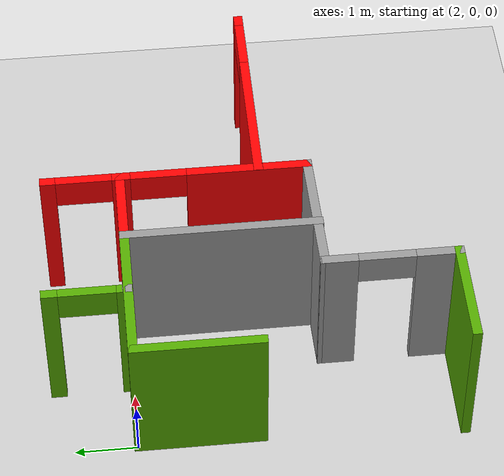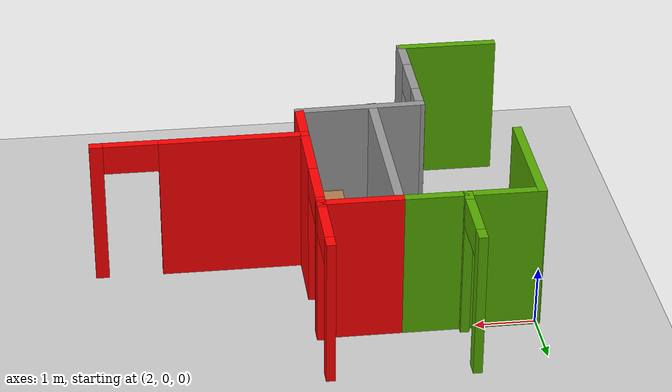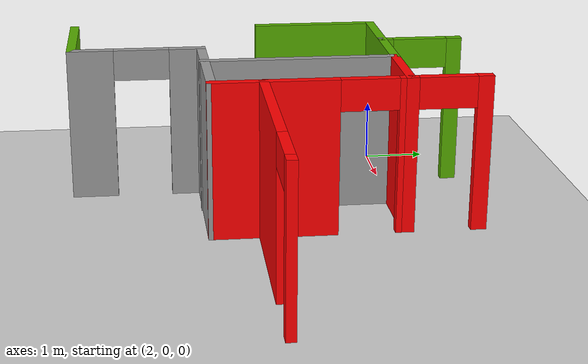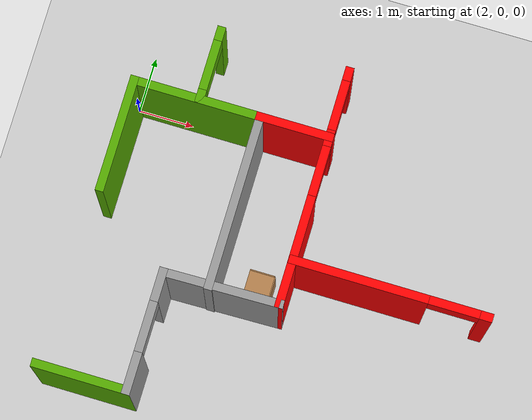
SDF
<sdf version="1.6">
 <world name="default">
  <model name="ground_plane">
   <static>1</static>
   <link name="link">
    <collision name="collision">
     <geometry><plane><normal>0 0 1</normal><size>100 100</size></plane></geometry>
     <surface><friction><ode><mu>100</mu><mu2>50</mu2></ode></friction></surface>
    </collision>
    <visual name="visual">
     <cast_shadows>0</cast_shadows>
     <geometry><plane><normal>0 0 1</normal><size>100 100</size></plane></geometry>
     <material>
      <script><uri>file://media/materials/scripts/gazebo.material</uri><name>Gazebo/Grey</name></script>
     </material>
    </visual>
   </link>
  </model>
  <model name="1floorHouse">
   <link name="Wall_300">
    <pose>-0.789795 0.509996 0 0 0 -1.5708</pose>
    <visual name="Wall_300_Visual_0">
     <pose>-0.8265 0 1.25 0 -0 0</pose>
     <geometry><box><size>0.597 0.15 2.5</size></box></geometry>
     <material>
      <script><uri>file://media/materials/scripts/gazebo.material</uri><name>Gazebo/Grey</name></script>
      <ambient>1 1 1 1</ambient>
      <diffuse>0.7 0.7 0.7 1</diffuse>
      <specular>0.01 0.01 0.01 1</specular>
      <emissive>0 0 0 1</emissive>
     </material>
    </visual>
    <visual name="Wall_300_Visual_1">
     <pose>0.7485 0 1.25 0 -0 0</pose>
     <geometry><box><size>0.753 0.15 2.5</size></box></geometry>
     <material>
      <script><uri>file://media/materials/scripts/gazebo.material</uri><name>Gazebo/Grey</name></script>
      <ambient>1 1 1 1</ambient>
      <diffuse>0.7 0.7 0.7 1</diffuse>
      <specular>0.01 0.01 0.01 1</specular>
      <emissive>0 0 0 1</emissive>
     </material>
    </visual>
    <visual name="Wall_300_Visual_2">
     <pose>-0.078 0 2.25 0 -0 0</pose>
     <geometry><box><size>0.9 0.15 0.5</size></box></geometry>
     <material>
      <script><uri>file://media/materials/scripts/gazebo.material</uri><name>Gazebo/Grey</name></script>
      <ambient>1 1 1 1</ambient>
      <diffuse>0.7 0.7 0.7 1</diffuse>
      <specular>0.01 0.01 0.01 1</specular>
      <emissive>0 0 0 1</emissive>
     </material>
    </visual>
    <collision name="Wall_300_Collision_0">
     <pose>-0.8265 0 1.25 0 -0 0</pose>
     <geometry><box><size>0.597 0.15 2.5</size></box></geometry>
     <surface>
      <friction>
       <ode><mu>1</mu><mu2>1</mu2><fdir1>0 0 0</fdir1><slip1>0</slip1><slip2>0</slip2></ode>
       <torsional>
        <coefficient>1</coefficient>
        <patch_radius>0</patch_radius>
        <surface_radius>0</surface_radius>
        <use_patch_radius>1</use_patch_radius>
        <ode><slip>0</slip></ode>
       </torsional>
      </friction>
      <bounce><restitution_coefficient>0</restitution_coefficient><threshold>1e+06</threshold></bounce>
      <contact>
       <collide_without_contact>0</collide_without_contact>
       <collide_without_contact_bitmask>1</collide_without_contact_bitmask>
       <collide_bitmask>1</collide_bitmask>
       <ode>
        <soft_cfm>0</soft_cfm>
        <soft_erp>0.2</soft_erp>
        <kp>1e+13</kp>
        <kd>1</kd>
        <max_vel>0.01</max_vel>
        <min_depth>0</min_depth>
       </ode>
       <bullet>
        <split_impulse>1</split_impulse>
        <split_impulse_penetration_threshold>-0.01</split_impulse_penetration_threshold>
        <soft_cfm>0</soft_cfm>
        <soft_erp>0.2</soft_erp>
        <kp>1e+13</kp>
        <kd>1</kd>
       </bullet>
      </contact>
     </surface>
    </collision>
    <collision name="Wall_300_Collision_1">
     <pose>0.7485 0 1.25 0 -0 0</pose>
     <geometry><box><size>0.753 0.15 2.5</size></box></geometry>
     <surface>
      <friction>
       <ode><mu>1</mu><mu2>1</mu2><fdir1>0 0 0</fdir1><slip1>0</slip1><slip2>0</slip2></ode>
       <torsional>
        <coefficient>1</coefficient>
        <patch_radius>0</patch_radius>
        <surface_radius>0</surface_radius>
        <use_patch_radius>1</use_patch_radius>
        <ode><slip>0</slip></ode>
       </torsional>
      </friction>
      <bounce><restitution_coefficient>0</restitution_coefficient><threshold>1e+06</threshold></bounce>
      <contact>
       <collide_without_contact>0</collide_without_contact>
       <collide_without_contact_bitmask>1</collide_without_contact_bitmask>
       <collide_bitmask>1</collide_bitmask>
       <ode>
        <soft_cfm>0</soft_cfm>
        <soft_erp>0.2</soft_erp>
        <kp>1e+13</kp>
        <kd>1</kd>
        <max_vel>0.01</max_vel>
        <min_depth>0</min_depth>
       </ode>
       <bullet>
        <split_impulse>1</split_impulse>
        <split_impulse_penetration_threshold>-0.01</split_impulse_penetration_threshold>
        <soft_cfm>0</soft_cfm>
        <soft_erp>0.2</soft_erp>
        <kp>1e+13</kp>
        <kd>1</kd>
       </bullet>
      </contact>
     </surface>
    </collision>
    <collision name="Wall_300_Collision_2">
     <pose>-0.078 0 2.25 0 -0 0</pose>
     <geometry><box><size>0.9 0.15 0.5</size></box></geometry>
     <surface>
      <friction>
       <ode><mu>1</mu><mu2>1</mu2><fdir1>0 0 0</fdir1><slip1>0</slip1><slip2>0</slip2></ode>
       <torsional>
        <coefficient>1</coefficient>
        <patch_radius>0</patch_radius>
        <surface_radius>0</surface_radius>
        <use_patch_radius>1</use_patch_radius>
        <ode><slip>0</slip></ode>
       </torsional>
      </friction>
      <bounce><restitution_coefficient>0</restitution_coefficient><threshold>1e+06</threshold></bounce>
      <contact>
       <collide_without_contact>0</collide_without_contact>
       <collide_without_contact_bitmask>1</collide_without_contact_bitmask>
       <collide_bitmask>1</collide_bitmask>
       <ode>
        <soft_cfm>0</soft_cfm>
        <soft_erp>0.2</soft_erp>
        <kp>1e+13</kp>
        <kd>1</kd>
        <max_vel>0.01</max_vel>
        <min_depth>0</min_depth>
       </ode>
       <bullet>
        <split_impulse>1</split_impulse>
        <split_impulse_penetration_threshold>-0.01</split_impulse_penetration_threshold>
        <soft_cfm>0</soft_cfm>
        <soft_erp>0.2</soft_erp>
        <kp>1e+13</kp>
        <kd>1</kd>
       </bullet>
      </contact>
     </surface>
    </collision>
   </link>
   <link name="Wall_301">
    <pose>-1.5898 -0.540004 0 0 -0 3.14159</pose>
    <visual name="Wall_301_Visual">
     <pose>0 0 1.25 0 -0 0</pose>
     <geometry><box><size>1.75 0.15 2.5</size></box></geometry>
     <material>
      <script><uri>file://media/materials/scripts/gazebo.material</uri><name>Gazebo/Grey</name></script>
      <ambient>0.333333 0.666667 0 1</ambient>
      <diffuse>0.7 0.7 0.7 1</diffuse>
      <specular>0.01 0.01 0.01 1</specular>
      <emissive>0 0 0 1</emissive>
     </material>
    </visual>
    <collision name="Wall_301_Collision">
     <pose>0 0 1.25 0 -0 0</pose>
     <geometry><box><size>1.75 0.15 2.5</size></box></geometry>
     <surface>
      <friction>
       <ode><mu>1</mu><mu2>1</mu2><fdir1>0 0 0</fdir1><slip1>0</slip1><slip2>0</slip2></ode>
       <torsional>
        <coefficient>1</coefficient>
        <patch_radius>0</patch_radius>
        <surface_radius>0</surface_radius>
        <use_patch_radius>1</use_patch_radius>
        <ode><slip>0</slip></ode>
       </torsional>
      </friction>
      <bounce><restitution_coefficient>0</restitution_coefficient><threshold>1e+06</threshold></bounce>
      <contact>
       <collide_without_contact>0</collide_without_contact>
       <collide_without_contact_bitmask>1</collide_without_contact_bitmask>
       <collide_bitmask>1</collide_bitmask>
       <ode>
        <soft_cfm>0</soft_cfm>
        <soft_erp>0.2</soft_erp>
        <kp>1e+13</kp>
        <kd>1</kd>
        <max_vel>0.01</max_vel>
        <min_depth>0</min_depth>
       </ode>
       <bullet>
        <split_impulse>1</split_impulse>
        <split_impulse_penetration_threshold>-0.01</split_impulse_penetration_threshold>
        <soft_cfm>0</soft_cfm>
        <soft_erp>0.2</soft_erp>
        <kp>1e+13</kp>
        <kd>1</kd>
       </bullet>
      </contact>
     </surface>
    </collision>
   </link>
   <link name="Wall_312">
    <pose>0.235204 1.58011 0 0 -0 0.01962</pose>
    <visual name="Wall_312_Visual">
     <pose>0 0 1.25 0 -0 0</pose>
     <geometry><box><size>2.20039 0.15 2.5</size></box></geometry>
     <material>
      <script><uri>file://media/materials/scripts/gazebo.material</uri><name>Gazebo/Grey</name></script>
      <ambient>1 1 1 1</ambient>
      <diffuse>0.7 0.7 0.7 1</diffuse>
      <specular>0.01 0.01 0.01 1</specular>
      <emissive>0 0 0 1</emissive>
     </material>
    </visual>
    <collision name="Wall_312_Collision">
     <pose>0 0 1.25 0 -0 0</pose>
     <geometry><box><size>2.20039 0.15 2.5</size></box></geometry>
     <surface>
      <friction>
       <ode><mu>1</mu><mu2>1</mu2><fdir1>0 0 0</fdir1><slip1>0</slip1><slip2>0</slip2></ode>
       <torsional>
        <coefficient>1</coefficient>
        <patch_radius>0</patch_radius>
        <surface_radius>0</surface_radius>
        <use_patch_radius>1</use_patch_radius>
        <ode><slip>0</slip></ode>
       </torsional>
      </friction>
      <bounce><restitution_coefficient>0</restitution_coefficient><threshold>1e+06</threshold></bounce>
      <contact>
       <collide_without_contact>0</collide_without_contact>
       <collide_without_contact_bitmask>1</collide_without_contact_bitmask>
       <collide_bitmask>1</collide_bitmask>
       <ode>
        <soft_cfm>0</soft_cfm>
        <soft_erp>0.2</soft_erp>
        <kp>1e+13</kp>
        <kd>1</kd>
        <max_vel>0.01</max_vel>
        <min_depth>0</min_depth>
       </ode>
       <bullet>
        <split_impulse>1</split_impulse>
        <split_impulse_penetration_threshold>-0.01</split_impulse_penetration_threshold>
        <soft_cfm>0</soft_cfm>
        <soft_erp>0.2</soft_erp>
        <kp>1e+13</kp>
        <kd>1</kd>
       </bullet>
      </contact>
     </surface>
    </collision>
   </link>
   <link name="Wall_313">
    <pose>1.26021 3.10511 0 0 -0 1.5708</pose>
    <visual name="Wall_313_Visual_0">
     <pose>-0.572109 0 1.25 0 -0 0</pose>
     <geometry><box><size>2.01555 0.15 2.5</size></box></geometry>
     <material>
      <script><uri>file://media/materials/scripts/gazebo.material</uri><name>Gazebo/Grey</name></script>
      <ambient>1 0 0 1</ambient>
      <diffuse>0.7 0.7 0.7 1</diffuse>
      <specular>0.01 0.01 0.01 1</specular>
      <emissive>0 0 0 1</emissive>
     </material>
    </visual>
    <visual name="Wall_313_Visual_2">
     <pose>0.885669 0 2.25 0 -0 0</pose>
     <geometry><box><size>0.9 0.15 0.5</size></box></geometry>
     <material>
      <script><uri>file://media/materials/scripts/gazebo.material</uri><name>Gazebo/Grey</name></script>
      <ambient>1 0 0 1</ambient>
      <diffuse>0.7 0.7 0.7 1</diffuse>
      <specular>0.01 0.01 0.01 1</specular>
      <emissive>0 0 0 1</emissive>
     </material>
    </visual>
    <visual name="Wall_313_Visual_1">
     <pose>1.45778 0 1.25 0 -0 0</pose>
     <geometry><box><size>0.244218 0.15 2.5</size></box></geometry>
     <material>
      <script><uri>file://media/materials/scripts/gazebo.material</uri><name>Gazebo/Grey</name></script>
      <ambient>1 0 0 1</ambient>
      <diffuse>0.7 0.7 0.7 1</diffuse>
      <specular>0.01 0.01 0.01 1</specular>
      <emissive>0 0 0 1</emissive>
     </material>
    </visual>
    <collision name="Wall_313_Collision_1">
     <pose>1.45778 0 1.25 0 -0 0</pose>
     <geometry><box><size>0.244218 0.15 2.5</size></box></geometry>
     <surface>
      <friction>
       <ode><mu>1</mu><mu2>1</mu2><fdir1>0 0 0</fdir1><slip1>0</slip1><slip2>0</slip2></ode>
       <torsional>
        <coefficient>1</coefficient>
        <patch_radius>0</patch_radius>
        <surface_radius>0</surface_radius>
        <use_patch_radius>1</use_patch_radius>
        <ode><slip>0</slip></ode>
       </torsional>
      </friction>
      <bounce><restitution_coefficient>0</restitution_coefficient><threshold>1e+06</threshold></bounce>
      <contact>
       <collide_without_contact>0</collide_without_contact>
       <collide_without_contact_bitmask>1</collide_without_contact_bitmask>
       <collide_bitmask>1</collide_bitmask>
       <ode>
        <soft_cfm>0</soft_cfm>
        <soft_erp>0.2</soft_erp>
        <kp>1e+13</kp>
        <kd>1</kd>
        <max_vel>0.01</max_vel>
        <min_depth>0</min_depth>
       </ode>
       <bullet>
        <split_impulse>1</split_impulse>
        <split_impulse_penetration_threshold>-0.01</split_impulse_penetration_threshold>
        <soft_cfm>0</soft_cfm>
        <soft_erp>0.2</soft_erp>
        <kp>1e+13</kp>
        <kd>1</kd>
       </bullet>
      </contact>
     </surface>
    </collision>
    <collision name="Wall_313_Collision_0">
     <pose>-0.572109 0 1.25 0 -0 0</pose>
     <geometry><box><size>2.01555 0.15 2.5</size></box></geometry>
     <surface>
      <friction>
       <ode><mu>1</mu><mu2>1</mu2><fdir1>0 0 0</fdir1><slip1>0</slip1><slip2>0</slip2></ode>
       <torsional>
        <coefficient>1</coefficient>
        <patch_radius>0</patch_radius>
        <surface_radius>0</surface_radius>
        <use_patch_radius>1</use_patch_radius>
        <ode><slip>0</slip></ode>
       </torsional>
      </friction>
      <bounce><restitution_coefficient>0</restitution_coefficient><threshold>1e+06</threshold></bounce>
      <contact>
       <collide_without_contact>0</collide_without_contact>
       <collide_without_contact_bitmask>1</collide_without_contact_bitmask>
       <collide_bitmask>1</collide_bitmask>
       <ode>
        <soft_cfm>0</soft_cfm>
        <soft_erp>0.2</soft_erp>
        <kp>1e+13</kp>
        <kd>1</kd>
        <max_vel>0.01</max_vel>
        <min_depth>0</min_depth>
       </ode>
       <bullet>
        <split_impulse>1</split_impulse>
        <split_impulse_penetration_threshold>-0.01</split_impulse_penetration_threshold>
        <soft_cfm>0</soft_cfm>
        <soft_erp>0.2</soft_erp>
        <kp>1e+13</kp>
        <kd>1</kd>
       </bullet>
      </contact>
     </surface>
    </collision>
    <collision name="Wall_313_Collision_2">
     <pose>0.885669 0 2.25 0 -0 0</pose>
     <geometry><box><size>0.9 0.15 0.5</size></box></geometry>
     <surface>
      <friction>
       <ode><mu>1</mu><mu2>1</mu2><fdir1>0 0 0</fdir1><slip1>0</slip1><slip2>0</slip2></ode>
       <torsional>
        <coefficient>1</coefficient>
        <patch_radius>0</patch_radius>
        <surface_radius>0</surface_radius>
        <use_patch_radius>1</use_patch_radius>
        <ode><slip>0</slip></ode>
       </torsional>
      </friction>
      <bounce><restitution_coefficient>0</restitution_coefficient><threshold>1e+06</threshold></bounce>
      <contact>
       <collide_without_contact>0</collide_without_contact>
       <collide_without_contact_bitmask>1</collide_without_contact_bitmask>
       <collide_bitmask>1</collide_bitmask>
       <ode>
        <soft_cfm>0</soft_cfm>
        <soft_erp>0.2</soft_erp>
        <kp>1e+13</kp>
        <kd>1</kd>
        <max_vel>0.01</max_vel>
        <min_depth>0</min_depth>
       </ode>
       <bullet>
        <split_impulse>1</split_impulse>
        <split_impulse_penetration_threshold>-0.01</split_impulse_penetration_threshold>
        <soft_cfm>0</soft_cfm>
        <soft_erp>0.2</soft_erp>
        <kp>1e+13</kp>
        <kd>1</kd>
       </bullet>
      </contact>
     </surface>
    </collision>
   </link>
   <link name="Wall_314">
    <pose>0.641704 4.61 0 0 -0 3.14159</pose>
    <visual name="Wall_314_Visual">
     <pose>0 0 1.25 0 -0 0</pose>
     <geometry><box><size>1.387 0.15 2.5</size></box></geometry>
     <material>
      <script><uri>file://media/materials/scripts/gazebo.material</uri><name>Gazebo/Grey</name></script>
      <ambient>1 0 0 1</ambient>
      <diffuse>0.7 0.7 0.7 1</diffuse>
      <specular>0.01 0.01 0.01 1</specular>
      <emissive>0 0 0 1</emissive>
     </material>
    </visual>
    <collision name="Wall_314_Collision">
     <pose>0 0 1.25 0 -0 0</pose>
     <geometry><box><size>1.387 0.15 2.5</size></box></geometry>
     <surface>
      <friction>
       <ode><mu>1</mu><mu2>1</mu2><fdir1>0 0 0</fdir1><slip1>0</slip1><slip2>0</slip2></ode>
       <torsional>
        <coefficient>1</coefficient>
        <patch_radius>0</patch_radius>
        <surface_radius>0</surface_radius>
        <use_patch_radius>1</use_patch_radius>
        <ode><slip>0</slip></ode>
       </torsional>
      </friction>
      <bounce><restitution_coefficient>0</restitution_coefficient><threshold>1e+06</threshold></bounce>
      <contact>
       <collide_without_contact>0</collide_without_contact>
       <collide_without_contact_bitmask>1</collide_without_contact_bitmask>
       <collide_bitmask>1</collide_bitmask>
       <ode>
        <soft_cfm>0</soft_cfm>
        <soft_erp>0.2</soft_erp>
        <kp>1e+13</kp>
        <kd>1</kd>
        <max_vel>0.01</max_vel>
        <min_depth>0</min_depth>
       </ode>
       <bullet>
        <split_impulse>1</split_impulse>
        <split_impulse_penetration_threshold>-0.01</split_impulse_penetration_threshold>
        <soft_cfm>0</soft_cfm>
        <soft_erp>0.2</soft_erp>
        <kp>1e+13</kp>
        <kd>1</kd>
       </bullet>
      </contact>
     </surface>
    </collision>
   </link>
   <link name="Wall_315">
    <pose>0.023205 3.085 0 0 0 -1.5708</pose>
    <visual name="Wall_315_Visual">
     <pose>0 0 1.25 0 -0 0</pose>
     <geometry><box><size>3.2 0.15 2.5</size></box></geometry>
     <material>
      <script><uri>file://media/materials/scripts/gazebo.material</uri><name>Gazebo/Grey</name></script>
      <ambient>1 1 1 1</ambient>
      <diffuse>0.7 0.7 0.7 1</diffuse>
      <specular>0.01 0.01 0.01 1</specular>
      <emissive>0 0 0 1</emissive>
     </material>
    </visual>
    <collision name="Wall_315_Collision">
     <pose>0 0 1.25 0 -0 0</pose>
     <geometry><box><size>3.2 0.15 2.5</size></box></geometry>
     <surface>
      <friction>
       <ode><mu>1</mu><mu2>1</mu2><fdir1>0 0 0</fdir1><slip1>0</slip1><slip2>0</slip2></ode>
       <torsional>
        <coefficient>1</coefficient>
        <patch_radius>0</patch_radius>
        <surface_radius>0</surface_radius>
        <use_patch_radius>1</use_patch_radius>
        <ode><slip>0</slip></ode>
       </torsional>
      </friction>
      <bounce><restitution_coefficient>0</restitution_coefficient><threshold>1e+06</threshold></bounce>
      <contact>
       <collide_without_contact>0</collide_without_contact>
       <collide_without_contact_bitmask>1</collide_without_contact_bitmask>
       <collide_bitmask>1</collide_bitmask>
       <ode>
        <soft_cfm>0</soft_cfm>
        <soft_erp>0.2</soft_erp>
        <kp>1e+13</kp>
        <kd>1</kd>
        <max_vel>0.01</max_vel>
        <min_depth>0</min_depth>
       </ode>
       <bullet>
        <split_impulse>1</split_impulse>
        <split_impulse_penetration_threshold>-0.01</split_impulse_penetration_threshold>
        <soft_cfm>0</soft_cfm>
        <soft_erp>0.2</soft_erp>
        <kp>1e+13</kp>
        <kd>1</kd>
       </bullet>
      </contact>
     </surface>
    </collision>
   </link>
   <link name="Wall_316">
    <pose>-1.1018 4.61 0 0 -0 3.14159</pose>
    <visual name="Wall_316_Visual">
     <pose>0 0 1.25 0 -0 0</pose>
     <geometry><box><size>2.4 0.15 2.5</size></box></geometry>
     <material>
      <script><uri>file://media/materials/scripts/gazebo.material</uri><name>Gazebo/Grey</name></script>
      <ambient>0.333333 0.666667 0 1</ambient>
      <diffuse>0.7 0.7 0.7 1</diffuse>
      <specular>0.01 0.01 0.01 1</specular>
      <emissive>0 0 0 1</emissive>
     </material>
    </visual>
    <collision name="Wall_316_Collision">
     <pose>0 0 1.25 0 -0 0</pose>
     <geometry><box><size>2.4 0.15 2.5</size></box></geometry>
     <surface>
      <friction>
       <ode><mu>1</mu><mu2>1</mu2><fdir1>0 0 0</fdir1><slip1>0</slip1><slip2>0</slip2></ode>
       <torsional>
        <coefficient>1</coefficient>
        <patch_radius>0</patch_radius>
        <surface_radius>0</surface_radius>
        <use_patch_radius>1</use_patch_radius>
        <ode><slip>0</slip></ode>
       </torsional>
      </friction>
      <bounce><restitution_coefficient>0</restitution_coefficient><threshold>1e+06</threshold></bounce>
      <contact>
       <collide_without_contact>0</collide_without_contact>
       <collide_without_contact_bitmask>1</collide_without_contact_bitmask>
       <collide_bitmask>1</collide_bitmask>
       <ode>
        <soft_cfm>0</soft_cfm>
        <soft_erp>0.2</soft_erp>
        <kp>1e+13</kp>
        <kd>1</kd>
        <max_vel>0.01</max_vel>
        <min_depth>0</min_depth>
       </ode>
       <bullet>
        <split_impulse>1</split_impulse>
        <split_impulse_penetration_threshold>-0.01</split_impulse_penetration_threshold>
        <soft_cfm>0</soft_cfm>
        <soft_erp>0.2</soft_erp>
        <kp>1e+13</kp>
        <kd>1</kd>
       </bullet>
      </contact>
     </surface>
    </collision>
   </link>
   <link name="Wall_317">
    <pose>-2.23979 3.635 0 0 -0 1.5708</pose>
    <visual name="Wall_317_Visual">
     <pose>0 0 1.25 0 -0 0</pose>
     <geometry><box><size>2.1 0.15 2.5</size></box></geometry>
     <material>
      <script><uri>file://media/materials/scripts/gazebo.material</uri><name>Gazebo/Grey</name></script>
      <ambient>0.333333 0.666667 0 1</ambient>
      <diffuse>0.7 0.7 0.7 1</diffuse>
      <specular>0.01 0.01 0.01 1</specular>
      <emissive>0 0 0 1</emissive>
     </material>
    </visual>
    <collision name="Wall_317_Collision">
     <pose>0 0 1.25 0 -0 0</pose>
     <geometry><box><size>2.1 0.15 2.5</size></box></geometry>
     <surface>
      <friction>
       <ode><mu>1</mu><mu2>1</mu2><fdir1>0 0 0</fdir1><slip1>0</slip1><slip2>0</slip2></ode>
       <torsional>
        <coefficient>1</coefficient>
        <patch_radius>0</patch_radius>
        <surface_radius>0</surface_radius>
        <use_patch_radius>1</use_patch_radius>
        <ode><slip>0</slip></ode>
       </torsional>
      </friction>
      <bounce><restitution_coefficient>0</restitution_coefficient><threshold>1e+06</threshold></bounce>
      <contact>
       <collide_without_contact>0</collide_without_contact>
       <collide_without_contact_bitmask>1</collide_without_contact_bitmask>
       <collide_bitmask>1</collide_bitmask>
       <ode>
        <soft_cfm>0</soft_cfm>
        <soft_erp>0.2</soft_erp>
        <kp>1e+13</kp>
        <kd>1</kd>
        <max_vel>0.01</max_vel>
        <min_depth>0</min_depth>
       </ode>
       <bullet>
        <split_impulse>1</split_impulse>
        <split_impulse_penetration_threshold>-0.01</split_impulse_penetration_threshold>
        <soft_cfm>0</soft_cfm>
        <soft_erp>0.2</soft_erp>
        <kp>1e+13</kp>
        <kd>1</kd>
       </bullet>
      </contact>
     </surface>
    </collision>
   </link>
   <link name="Wall_320">
    <pose>-1.0598 5.245 0 0 0 -1.5708</pose>
    <visual name="Wall_320_Visual_0">
     <pose>-0.572184 0 1.25 0 -0 0</pose>
     <geometry><box><size>0.255633 0.15 2.5</size></box></geometry>
     <material>
      <script><uri>file://media/materials/scripts/gazebo.material</uri><name>Gazebo/Grey</name></script>
      <ambient>0.333333 0.666667 0 1</ambient>
      <diffuse>0.7 0.7 0.7 1</diffuse>
      <specular>0.01 0.01 0.01 1</specular>
      <emissive>0 0 0 1</emissive>
     </material>
    </visual>
    <visual name="Wall_320_Visual_1">
     <pose>0.577816 0 1.25 0 -0 0</pose>
     <geometry><box><size>0.244367 0.15 2.5</size></box></geometry>
     <material>
      <script><uri>file://media/materials/scripts/gazebo.material</uri><name>Gazebo/Grey</name></script>
      <ambient>0.333333 0.666667 0 1</ambient>
      <diffuse>0.7 0.7 0.7 1</diffuse>
      <specular>0.01 0.01 0.01 1</specular>
      <emissive>0 0 0 1</emissive>
     </material>
    </visual>
    <visual name="Wall_320_Visual_2">
     <pose>0.005633 0 2.25 0 -0 0</pose>
     <geometry><box><size>0.9 0.15 0.5</size></box></geometry>
     <material>
      <script><uri>file://media/materials/scripts/gazebo.material</uri><name>Gazebo/Grey</name></script>
      <ambient>0.333333 0.666667 0 1</ambient>
      <diffuse>0.7 0.7 0.7 1</diffuse>
      <specular>0.01 0.01 0.01 1</specular>
      <emissive>0 0 0 1</emissive>
     </material>
    </visual>
    <collision name="Wall_320_Collision_0">
     <pose>-0.572184 0 1.25 0 -0 0</pose>
     <geometry><box><size>0.255633 0.15 2.5</size></box></geometry>
     <surface>
      <friction>
       <ode><mu>1</mu><mu2>1</mu2><fdir1>0 0 0</fdir1><slip1>0</slip1><slip2>0</slip2></ode>
       <torsional>
        <coefficient>1</coefficient>
        <patch_radius>0</patch_radius>
        <surface_radius>0</surface_radius>
        <use_patch_radius>1</use_patch_radius>
        <ode><slip>0</slip></ode>
       </torsional>
      </friction>
      <bounce><restitution_coefficient>0</restitution_coefficient><threshold>1e+06</threshold></bounce>
      <contact>
       <collide_without_contact>0</collide_without_contact>
       <collide_without_contact_bitmask>1</collide_without_contact_bitmask>
       <collide_bitmask>1</collide_bitmask>
       <ode>
        <soft_cfm>0</soft_cfm>
        <soft_erp>0.2</soft_erp>
        <kp>1e+13</kp>
        <kd>1</kd>
        <max_vel>0.01</max_vel>
        <min_depth>0</min_depth>
       </ode>
       <bullet>
        <split_impulse>1</split_impulse>
        <split_impulse_penetration_threshold>-0.01</split_impulse_penetration_threshold>
        <soft_cfm>0</soft_cfm>
        <soft_erp>0.2</soft_erp>
        <kp>1e+13</kp>
        <kd>1</kd>
       </bullet>
      </contact>
     </surface>
    </collision>
    <collision name="Wall_320_Collision_2">
     <pose>0.005633 0 2.25 0 -0 0</pose>
     <geometry><box><size>0.9 0.15 0.5</size></box></geometry>
     <surface>
      <friction>
       <ode><mu>1</mu><mu2>1</mu2><fdir1>0 0 0</fdir1><slip1>0</slip1><slip2>0</slip2></ode>
       <torsional>
        <coefficient>1</coefficient>
        <patch_radius>0</patch_radius>
        <surface_radius>0</surface_radius>
        <use_patch_radius>1</use_patch_radius>
        <ode><slip>0</slip></ode>
       </torsional>
      </friction>
      <bounce><restitution_coefficient>0</restitution_coefficient><threshold>1e+06</threshold></bounce>
      <contact>
       <collide_without_contact>0</collide_without_contact>
       <collide_without_contact_bitmask>1</collide_without_contact_bitmask>
       <collide_bitmask>1</collide_bitmask>
       <ode>
        <soft_cfm>0</soft_cfm>
        <soft_erp>0.2</soft_erp>
        <kp>1e+13</kp>
        <kd>1</kd>
        <max_vel>0.01</max_vel>
        <min_depth>0</min_depth>
       </ode>
       <bullet>
        <split_impulse>1</split_impulse>
        <split_impulse_penetration_threshold>-0.01</split_impulse_penetration_threshold>
        <soft_cfm>0</soft_cfm>
        <soft_erp>0.2</soft_erp>
        <kp>1e+13</kp>
        <kd>1</kd>
       </bullet>
      </contact>
     </surface>
    </collision>
    <collision name="Wall_320_Collision_1">
     <pose>0.577816 0 1.25 0 -0 0</pose>
     <geometry><box><size>0.244367 0.15 2.5</size></box></geometry>
     <surface>
      <friction>
       <ode><mu>1</mu><mu2>1</mu2><fdir1>0 0 0</fdir1><slip1>0</slip1><slip2>0</slip2></ode>
       <torsional>
        <coefficient>1</coefficient>
        <patch_radius>0</patch_radius>
        <surface_radius>0</surface_radius>
        <use_patch_radius>1</use_patch_radius>
        <ode><slip>0</slip></ode>
       </torsional>
      </friction>
      <bounce><restitution_coefficient>0</restitution_coefficient><threshold>1e+06</threshold></bounce>
      <contact>
       <collide_without_contact>0</collide_without_contact>
       <collide_without_contact_bitmask>1</collide_without_contact_bitmask>
       <collide_bitmask>1</collide_bitmask>
       <ode>
        <soft_cfm>0</soft_cfm>
        <soft_erp>0.2</soft_erp>
        <kp>1e+13</kp>
        <kd>1</kd>
        <max_vel>0.01</max_vel>
        <min_depth>0</min_depth>
       </ode>
       <bullet>
        <split_impulse>1</split_impulse>
        <split_impulse_penetration_threshold>-0.01</split_impulse_penetration_threshold>
        <soft_cfm>0</soft_cfm>
        <soft_erp>0.2</soft_erp>
        <kp>1e+13</kp>
        <kd>1</kd>
       </bullet>
      </contact>
     </surface>
    </collision>
   </link>
   <link name="Wall_321">
    <pose>-1.0598 4.62 0 0 -0 0</pose>
    <visual name="Wall_321_Visual">
     <pose>0 0 1.25 0 -0 0</pose>
     <geometry><box><size>0.15 0.15 2.5</size></box></geometry>
     <material>
      <script><uri>file://media/materials/scripts/gazebo.material</uri><name>Gazebo/Grey</name></script>
      <ambient>1 1 1 1</ambient>
      <diffuse>0.7 0.7 0.7 1</diffuse>
      <specular>0.01 0.01 0.01 1</specular>
      <emissive>0 0 0 1</emissive>
     </material>
    </visual>
    <collision name="Wall_321_Collision">
     <pose>0 0 1.25 0 -0 0</pose>
     <geometry><box><size>0.15 0.15 2.5</size></box></geometry>
     <surface>
      <friction>
       <ode><mu>1</mu><mu2>1</mu2><fdir1>0 0 0</fdir1><slip1>0</slip1><slip2>0</slip2></ode>
       <torsional>
        <coefficient>1</coefficient>
        <patch_radius>0</patch_radius>
        <surface_radius>0</surface_radius>
        <use_patch_radius>1</use_patch_radius>
        <ode><slip>0</slip></ode>
       </torsional>
      </friction>
      <bounce><restitution_coefficient>0</restitution_coefficient><threshold>1e+06</threshold></bounce>
      <contact>
       <collide_without_contact>0</collide_without_contact>
       <collide_without_contact_bitmask>1</collide_without_contact_bitmask>
       <collide_bitmask>1</collide_bitmask>
       <ode>
        <soft_cfm>0</soft_cfm>
        <soft_erp>0.2</soft_erp>
        <kp>1e+13</kp>
        <kd>1</kd>
        <max_vel>0.01</max_vel>
        <min_depth>0</min_depth>
       </ode>
       <bullet>
        <split_impulse>1</split_impulse>
        <split_impulse_penetration_threshold>-0.01</split_impulse_penetration_threshold>
        <soft_cfm>0</soft_cfm>
        <soft_erp>0.2</soft_erp>
        <kp>1e+13</kp>
        <kd>1</kd>
       </bullet>
      </contact>
     </surface>
    </collision>
   </link>
   <link name="Wall_322">
    <pose>2.9912 2.388 0 0 -0 0</pose>
    <visual name="Wall_322_Visual_0">
     <pose>-0.562525 0 1.25 0 -0 0</pose>
     <geometry><box><size>2.47495 0.15 2.5</size></box></geometry>
     <material>
      <script><uri>file://media/materials/scripts/gazebo.material</uri><name>Gazebo/Grey</name></script>
      <ambient>1 0 0 1</ambient>
      <diffuse>0.7 0.7 0.7 1</diffuse>
      <specular>0.01 0.01 0.01 1</specular>
      <emissive>0 0 0 1</emissive>
     </material>
    </visual>
    <visual name="Wall_322_Visual_1">
     <pose>1.68748 0 1.25 0 -0 0</pose>
     <geometry><box><size>0.225051 0.15 2.5</size></box></geometry>
     <material>
      <script><uri>file://media/materials/scripts/gazebo.material</uri><name>Gazebo/Grey</name></script>
      <ambient>1 0 0 1</ambient>
      <diffuse>0.7 0.7 0.7 1</diffuse>
      <specular>0.01 0.01 0.01 1</specular>
      <emissive>0 0 0 1</emissive>
     </material>
    </visual>
    <visual name="Wall_322_Visual_2">
     <pose>1.12495 0 2.25 0 -0 0</pose>
     <geometry><box><size>0.9 0.15 0.5</size></box></geometry>
     <material>
      <script><uri>file://media/materials/scripts/gazebo.material</uri><name>Gazebo/Grey</name></script>
      <ambient>1 0 0 1</ambient>
      <diffuse>0.7 0.7 0.7 1</diffuse>
      <specular>0.01 0.01 0.01 1</specular>
      <emissive>0 0 0 1</emissive>
     </material>
    </visual>
    <collision name="Wall_322_Collision_0">
     <pose>-0.562525 0 1.25 0 -0 0</pose>
     <geometry><box><size>2.47495 0.15 2.5</size></box></geometry>
     <surface>
      <friction>
       <ode><mu>1</mu><mu2>1</mu2><fdir1>0 0 0</fdir1><slip1>0</slip1><slip2>0</slip2></ode>
       <torsional>
        <coefficient>1</coefficient>
        <patch_radius>0</patch_radius>
        <surface_radius>0</surface_radius>
        <use_patch_radius>1</use_patch_radius>
        <ode><slip>0</slip></ode>
       </torsional>
      </friction>
      <bounce><restitution_coefficient>0</restitution_coefficient><threshold>1e+06</threshold></bounce>
      <contact>
       <collide_without_contact>0</collide_without_contact>
       <collide_without_contact_bitmask>1</collide_without_contact_bitmask>
       <collide_bitmask>1</collide_bitmask>
       <ode>
        <soft_cfm>0</soft_cfm>
        <soft_erp>0.2</soft_erp>
        <kp>1e+13</kp>
        <kd>1</kd>
        <max_vel>0.01</max_vel>
        <min_depth>0</min_depth>
       </ode>
       <bullet>
        <split_impulse>1</split_impulse>
        <split_impulse_penetration_threshold>-0.01</split_impulse_penetration_threshold>
        <soft_cfm>0</soft_cfm>
        <soft_erp>0.2</soft_erp>
        <kp>1e+13</kp>
        <kd>1</kd>
       </bullet>
      </contact>
     </surface>
    </collision>
    <collision name="Wall_322_Collision_2">
     <pose>1.12495 0 2.25 0 -0 0</pose>
     <geometry><box><size>0.9 0.15 0.5</size></box></geometry>
     <surface>
      <friction>
       <ode><mu>1</mu><mu2>1</mu2><fdir1>0 0 0</fdir1><slip1>0</slip1><slip2>0</slip2></ode>
       <torsional>
        <coefficient>1</coefficient>
        <patch_radius>0</patch_radius>
        <surface_radius>0</surface_radius>
        <use_patch_radius>1</use_patch_radius>
        <ode><slip>0</slip></ode>
       </torsional>
      </friction>
      <bounce><restitution_coefficient>0</restitution_coefficient><threshold>1e+06</threshold></bounce>
      <contact>
       <collide_without_contact>0</collide_without_contact>
       <collide_without_contact_bitmask>1</collide_without_contact_bitmask>
       <collide_bitmask>1</collide_bitmask>
       <ode>
        <soft_cfm>0</soft_cfm>
        <soft_erp>0.2</soft_erp>
        <kp>1e+13</kp>
        <kd>1</kd>
        <max_vel>0.01</max_vel>
        <min_depth>0</min_depth>
       </ode>
       <bullet>
        <split_impulse>1</split_impulse>
        <split_impulse_penetration_threshold>-0.01</split_impulse_penetration_threshold>
        <soft_cfm>0</soft_cfm>
        <soft_erp>0.2</soft_erp>
        <kp>1e+13</kp>
        <kd>1</kd>
       </bullet>
      </contact>
     </surface>
    </collision>
    <collision name="Wall_322_Collision_1">
     <pose>1.68748 0 1.25 0 -0 0</pose>
     <geometry><box><size>0.225051 0.15 2.5</size></box></geometry>
     <surface>
      <friction>
       <ode><mu>1</mu><mu2>1</mu2><fdir1>0 0 0</fdir1><slip1>0</slip1><slip2>0</slip2></ode>
       <torsional>
        <coefficient>1</coefficient>
        <patch_radius>0</patch_radius>
        <surface_radius>0</surface_radius>
        <use_patch_radius>1</use_patch_radius>
        <ode><slip>0</slip></ode>
       </torsional>
      </friction>
      <bounce><restitution_coefficient>0</restitution_coefficient><threshold>1e+06</threshold></bounce>
      <contact>
       <collide_without_contact>0</collide_without_contact>
       <collide_without_contact_bitmask>1</collide_without_contact_bitmask>
       <collide_bitmask>1</collide_bitmask>
       <ode>
        <soft_cfm>0</soft_cfm>
        <soft_erp>0.2</soft_erp>
        <kp>1e+13</kp>
        <kd>1</kd>
        <max_vel>0.01</max_vel>
        <min_depth>0</min_depth>
       </ode>
       <bullet>
        <split_impulse>1</split_impulse>
        <split_impulse_penetration_threshold>-0.01</split_impulse_penetration_threshold>
        <soft_cfm>0</soft_cfm>
        <soft_erp>0.2</soft_erp>
        <kp>1e+13</kp>
        <kd>1</kd>
       </bullet>
      </contact>
     </surface>
    </collision>
   </link>
   <link name="Wall_325">
    <pose>1.26021 5.21 0 0 -0 1.5708</pose>
    <visual name="Wall_325_Visual_0">
     <pose>-0.574505 0 1.25 0 -0 0</pose>
     <geometry><box><size>0.20099 0.15 2.5</size></box></geometry>
     <material>
      <script><uri>file://media/materials/scripts/gazebo.material</uri><name>Gazebo/Grey</name></script>
      <ambient>1 0 0 1</ambient>
      <diffuse>0.7 0.7 0.7 1</diffuse>
      <specular>0.01 0.01 0.01 1</specular>
      <emissive>0 0 0 1</emissive>
     </material>
    </visual>
    <visual name="Wall_325_Visual_1">
     <pose>0.550495 0 1.25 0 -0 0</pose>
     <geometry><box><size>0.24901 0.15 2.5</size></box></geometry>
     <material>
      <script><uri>file://media/materials/scripts/gazebo.material</uri><name>Gazebo/Grey</name></script>
      <ambient>1 0 0 1</ambient>
      <diffuse>0.7 0.7 0.7 1</diffuse>
      <specular>0.01 0.01 0.01 1</specular>
      <emissive>0 0 0 1</emissive>
     </material>
    </visual>
    <visual name="Wall_325_Visual_2">
     <pose>-0.02401 0 2.25 0 -0 0</pose>
     <geometry><box><size>0.9 0.15 0.5</size></box></geometry>
     <material>
      <script><uri>file://media/materials/scripts/gazebo.material</uri><name>Gazebo/Grey</name></script>
      <ambient>1 0 0 1</ambient>
      <diffuse>0.7 0.7 0.7 1</diffuse>
      <specular>0.01 0.01 0.01 1</specular>
      <emissive>0 0 0 1</emissive>
     </material>
    </visual>
    <collision name="Wall_325_Collision_0">
     <pose>-0.574505 0 1.25 0 -0 0</pose>
     <geometry><box><size>0.20099 0.15 2.5</size></box></geometry>
     <surface>
      <friction>
       <ode><mu>1</mu><mu2>1</mu2><fdir1>0 0 0</fdir1><slip1>0</slip1><slip2>0</slip2></ode>
       <torsional>
        <coefficient>1</coefficient>
        <patch_radius>0</patch_radius>
        <surface_radius>0</surface_radius>
        <use_patch_radius>1</use_patch_radius>
        <ode><slip>0</slip></ode>
       </torsional>
      </friction>
      <bounce><restitution_coefficient>0</restitution_coefficient><threshold>1e+06</threshold></bounce>
      <contact>
       <collide_without_contact>0</collide_without_contact>
       <collide_without_contact_bitmask>1</collide_without_contact_bitmask>
       <collide_bitmask>1</collide_bitmask>
       <ode>
        <soft_cfm>0</soft_cfm>
        <soft_erp>0.2</soft_erp>
        <kp>1e+13</kp>
        <kd>1</kd>
        <max_vel>0.01</max_vel>
        <min_depth>0</min_depth>
       </ode>
       <bullet>
        <split_impulse>1</split_impulse>
        <split_impulse_penetration_threshold>-0.01</split_impulse_penetration_threshold>
        <soft_cfm>0</soft_cfm>
        <soft_erp>0.2</soft_erp>
        <kp>1e+13</kp>
        <kd>1</kd>
       </bullet>
      </contact>
     </surface>
    </collision>
    <collision name="Wall_325_Collision_1">
     <pose>0.550495 0 1.25 0 -0 0</pose>
     <geometry><box><size>0.24901 0.15 2.5</size></box></geometry>
     <surface>
      <friction>
       <ode><mu>1</mu><mu2>1</mu2><fdir1>0 0 0</fdir1><slip1>0</slip1><slip2>0</slip2></ode>
       <torsional>
        <coefficient>1</coefficient>
        <patch_radius>0</patch_radius>
        <surface_radius>0</surface_radius>
        <use_patch_radius>1</use_patch_radius>
        <ode><slip>0</slip></ode>
       </torsional>
      </friction>
      <bounce><restitution_coefficient>0</restitution_coefficient><threshold>1e+06</threshold></bounce>
      <contact>
       <collide_without_contact>0</collide_without_contact>
       <collide_without_contact_bitmask>1</collide_without_contact_bitmask>
       <collide_bitmask>1</collide_bitmask>
       <ode>
        <soft_cfm>0</soft_cfm>
        <soft_erp>0.2</soft_erp>
        <kp>1e+13</kp>
        <kd>1</kd>
        <max_vel>0.01</max_vel>
        <min_depth>0</min_depth>
       </ode>
       <bullet>
        <split_impulse>1</split_impulse>
        <split_impulse_penetration_threshold>-0.01</split_impulse_penetration_threshold>
        <soft_cfm>0</soft_cfm>
        <soft_erp>0.2</soft_erp>
        <kp>1e+13</kp>
        <kd>1</kd>
       </bullet>
      </contact>
     </surface>
    </collision>
    <collision name="Wall_325_Collision_2">
     <pose>-0.02401 0 2.25 0 -0 0</pose>
     <geometry><box><size>0.9 0.15 0.5</size></box></geometry>
     <surface>
      <friction>
       <ode><mu>1</mu><mu2>1</mu2><fdir1>0 0 0</fdir1><slip1>0</slip1><slip2>0</slip2></ode>
       <torsional>
        <coefficient>1</coefficient>
        <patch_radius>0</patch_radius>
        <surface_radius>0</surface_radius>
        <use_patch_radius>1</use_patch_radius>
        <ode><slip>0</slip></ode>
       </torsional>
      </friction>
      <bounce><restitution_coefficient>0</restitution_coefficient><threshold>1e+06</threshold></bounce>
      <contact>
       <collide_without_contact>0</collide_without_contact>
       <collide_without_contact_bitmask>1</collide_without_contact_bitmask>
       <collide_bitmask>1</collide_bitmask>
       <ode>
        <soft_cfm>0</soft_cfm>
        <soft_erp>0.2</soft_erp>
        <kp>1e+13</kp>
        <kd>1</kd>
        <max_vel>0.01</max_vel>
        <min_depth>0</min_depth>
       </ode>
       <bullet>
        <split_impulse>1</split_impulse>
        <split_impulse_penetration_threshold>-0.01</split_impulse_penetration_threshold>
        <soft_cfm>0</soft_cfm>
        <soft_erp>0.2</soft_erp>
        <kp>1e+13</kp>
        <kd>1</kd>
       </bullet>
      </contact>
     </surface>
    </collision>
   </link>
   <static>1</static>
   <pose>4.2533 -4.6154 0 0 -0 0</pose>
  </model>
  <model name="cabinet_1">
   <static>1</static>
   <link name="cabinet_bottom_plate">
    <inertial>
     <pose>0 0 -1 0 -0 0</pose>
     <inertia><ixx>2.05</ixx><ixy>0</ixy><ixz>0</ixz><iyy>2.05</iyy><iyz>0</iyz><izz>2.05</izz></inertia>
     <mass>25</mass>
    </inertial>
    <collision name="cabinet_bottom_plate_geom">
     <pose>0 0 0.01 0 -0 0</pose>
     <geometry><box><size>0.45 0.45 0.02</size></box></geometry>
    </collision>
    <visual name="cabinet_bottom_plate_geom_visual">
     <pose>0 0 0.01 0 -0 0</pose>
     <geometry><box><size>0.45 0.45 0.02</size></box></geometry>
     <material>
      <script><uri>file://media/materials/scripts/gazebo.material</uri><name>Gazebo/Wood</name></script>
     </material>
    </visual>
    <collision name="cabinet_bottom_plate_geom_cabinet_back_plate">
     <pose>0.235 0 0.51 0 -0 0</pose>
     <geometry><box><size>0.02 0.45 1.02</size></box></geometry>
    </collision>
    <visual name="cabinet_bottom_plate_geom_cabinet_back_plate_visual">
     <pose>0.235 0 0.51 0 -0 0</pose>
     <geometry><box><size>0.02 0.45 1.02</size></box></geometry>
     <material>
      <script><uri>file://media/materials/scripts/gazebo.material</uri><name>Gazebo/Wood</name></script>
     </material>
    </visual>
    <collision name="cabinet_bottom_plate_geom_cabinet_left_plate">
     <pose>0 0.235 0.51 0 -0 0</pose>
     <geometry><box><size>0.45 0.02 1.02</size></box></geometry>
    </collision>
    <visual name="cabinet_bottom_plate_geom_cabinet_left_plate_visual">
     <pose>0 0.235 0.51 0 -0 0</pose>
     <geometry><box><size>0.45 0.02 1.02</size></box></geometry>
     <material>
      <script><uri>file://media/materials/scripts/gazebo.material</uri><name>Gazebo/Wood</name></script>
     </material>
    </visual>
    <collision name="cabinet_bottom_plate_geom_cabinet_middle_plate">
     <pose>0 0 0.51 0 -0 0</pose>
     <geometry><box><size>0.45 0.45 0.02</size></box></geometry>
    </collision>
    <visual name="cabinet_bottom_plate_geom_cabinet_middle_plate_visual">
     <pose>0 0 0.51 0 -0 0</pose>
     <geometry><box><size>0.45 0.45 0.02</size></box></geometry>
     <material>
      <script><uri>file://media/materials/scripts/gazebo.material</uri><name>Gazebo/Wood</name></script>
     </material>
    </visual>
    <collision name="cabinet_bottom_plate_geom_cabinet_right_plate">
     <pose>0 -0.235 0.51 0 -0 0</pose>
     <geometry><box><size>0.45 0.02 1.02</size></box></geometry>
    </collision>
    <visual name="cabinet_bottom_plate_geom_cabinet_right_plate_visual">
     <pose>0 -0.235 0.51 0 -0 0</pose>
     <geometry><box><size>0.45 0.02 1.02</size></box></geometry>
     <material>
      <script><uri>file://media/materials/scripts/gazebo.material</uri><name>Gazebo/Wood</name></script>
     </material>
    </visual>
    <collision name="cabinet_bottom_plate_geom_cabinet_top_plate">
     <pose>0 0 1.01 0 -0 0</pose>
     <geometry><box><size>0.45 0.45 0.02</size></box></geometry>
    </collision>
    <visual name="cabinet_bottom_plate_geom_cabinet_top_plate_visual">
     <pose>0 0 1.01 0 -0 0</pose>
     <geometry><box><size>0.45 0.45 0.02</size></box></geometry>
     <material>
      <script><uri>file://media/materials/scripts/gazebo.material</uri><name>Gazebo/Wood</name></script>
     </material>
    </visual>
   </link>
   <pose>5.02193 -2.6035 0 0 -0 0</pose>
  </model>
 </world>
</sdf>
